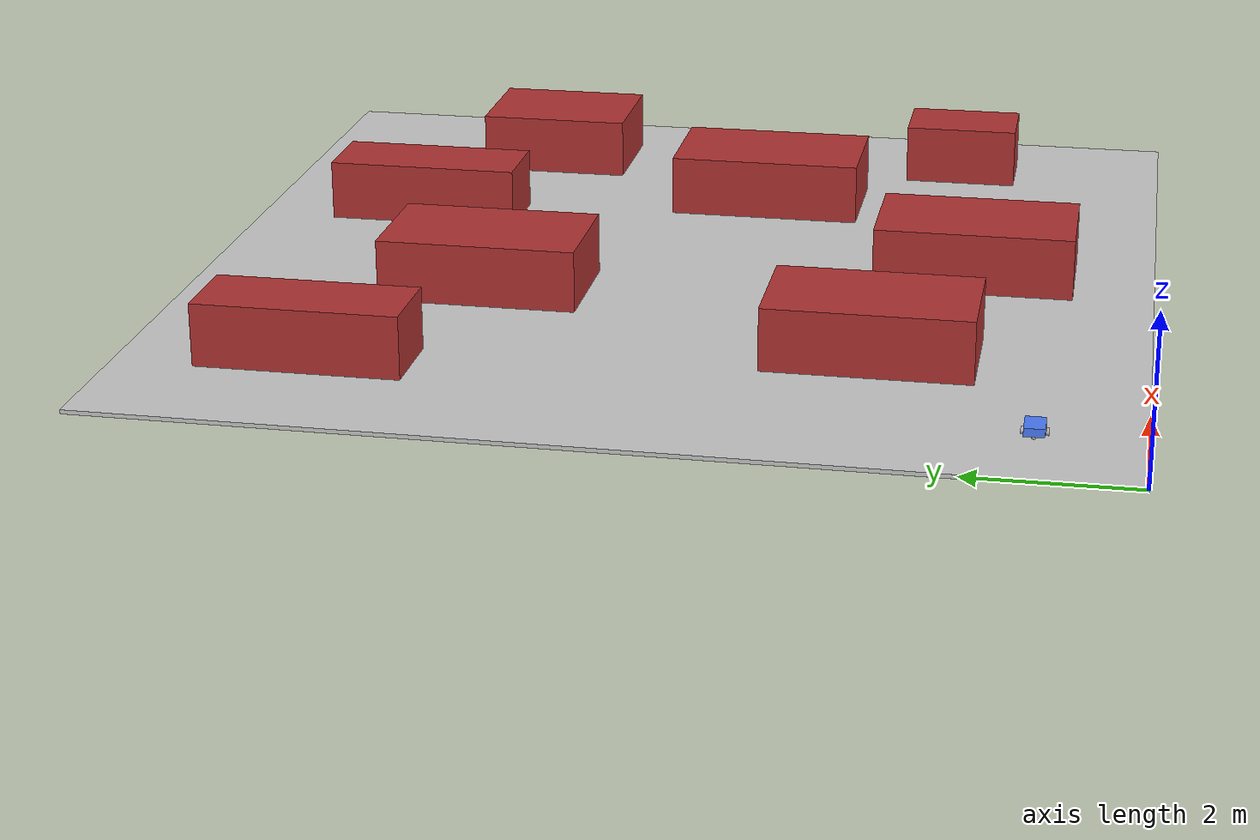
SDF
<?xml version="1.0" ?>
<sdf version="1.6">
  <world name="q_learning_world">
    <physics name="1ms" type="ignored">
      <max_step_size>0.001</max_step_size>
      <real_time_factor>1.0</real_time_factor>
    </physics>
    <plugin filename="ignition-gazebo-physics-system" name="gz::sim::systems::Physics"/>
    <plugin filename="ignition-gazebo-user-commands-system" name="gz::sim::systems::UserCommands"/>
    <plugin filename="ignition-gazebo-scene-broadcaster-system" name="gz::sim::systems::SceneBroadcaster"/>
    <light type="directional" name="sun">
      <cast_shadows>true</cast_shadows>
      <pose>0 0 20 0 0 0</pose>
      <diffuse>1 1 1 1</diffuse>
      <specular>0.3 0.3 0.3 1</specular>
      <direction>-0.5 0.1 -0.9</direction>
    </light>
    <model name="ground_plane">
      <static>true</static>
      <link name="link">
        <pose>6.000 6.000 0 0 0 0</pose>
        <collision name="collision">
          <geometry>
            <box>
              <size>12.000 12.000 0.05</size>
            </box>
          </geometry>
        </collision>
        <visual name="visual">
          <geometry>
            <box>
              <size>12.000 12.000 0.05</size>
            </box>
          </geometry>
          <material>
            <ambient>0.8 0.8 0.8 1</ambient>
            <diffuse>0.8 0.8 0.8 1</diffuse>
          </material>
        </visual>
      </link>
    </model>
    <model name="vehicle_blue">
      <pose>1.250 1.250 0.00 0 0 0</pose>
      <link name="chassis">
        <pose>0 0 0.10 0 0 0</pose>
        <inertial><mass>2.0</mass><inertia><ixx>0.02</ixx><iyy>0.06</iyy><izz>0.07</izz></inertia></inertial>
        <collision name="collision"><geometry><box><size>0.35 0.24 0.10</size></box></geometry></collision>
        <visual name="visual"><geometry><box><size>0.35 0.24 0.10</size></box></geometry><material><ambient>0.3 0.5 1.0 1</ambient></material></visual>
      </link>
      <link name="left_wheel">
        <pose>0 0.14 0.05 -1.5708 0 0</pose>
        <inertial><mass>0.2</mass><inertia><ixx>0.0003</ixx><iyy>0.0003</iyy><izz>0.0003</izz></inertia></inertial>
        <collision name="collision"><geometry><cylinder><radius>0.05</radius><length>0.03</length></cylinder></geometry></collision>
        <visual name="visual"><geometry><cylinder><radius>0.05</radius><length>0.03</length></cylinder></geometry></visual>
      </link>
      <link name="right_wheel">
        <pose>0 -0.14 0.05 -1.5708 0 0</pose>
        <inertial><mass>0.2</mass><inertia><ixx>0.0003</ixx><iyy>0.0003</iyy><izz>0.0003</izz></inertia></inertial>
        <collision name="collision"><geometry><cylinder><radius>0.05</radius><length>0.03</length></cylinder></geometry></collision>
        <visual name="visual"><geometry><cylinder><radius>0.05</radius><length>0.03</length></cylinder></geometry></visual>
      </link>
      <link name="caster">
        <pose>-0.14 0 0.03 0 0 0</pose>
        <inertial><mass>0.1</mass><inertia><ixx>0.0001</ixx><iyy>0.0001</iyy><izz>0.0001</izz></inertia></inertial>
        <collision name="collision"><geometry><sphere><radius>0.03</radius></sphere></geometry></collision>
        <visual name="visual"><geometry><sphere><radius>0.03</radius></sphere></geometry></visual>
      </link>
      <joint name="left_wheel_joint" type="revolute"><parent>chassis</parent><child>left_wheel</child><axis><xyz>0 0 1</xyz></axis></joint>
      <joint name="right_wheel_joint" type="revolute"><parent>chassis</parent><child>right_wheel</child><axis><xyz>0 0 1</xyz></axis></joint>
      <joint name="caster_joint" type="ball"><parent>chassis</parent><child>caster</child></joint>
      <plugin filename="ignition-gazebo-diff-drive-system" name="gz::sim::systems::DiffDrive">
        <left_joint>left_wheel_joint</left_joint>
        <right_joint>right_wheel_joint</right_joint>
        <topic>/model/vehicle_blue/cmd_vel</topic>
        <odom_topic>/model/vehicle_blue/odometry</odom_topic>
        <frame_id>vehicle_blue/odom</frame_id>
        <child_frame_id>vehicle_blue/chassis</child_frame_id>
        <wheel_separation>0.28</wheel_separation>
        <wheel_radius>0.05</wheel_radius>
        <max_linear_velocity>0.7</max_linear_velocity>
        <min_linear_velocity>-0.4</min_linear_velocity>
        <max_angular_velocity>2.5</max_angular_velocity>
        <min_angular_velocity>-2.5</min_angular_velocity>
      </plugin>
    </model>
    <model name="obs_0_cluster_1">
      <static>true</static>
      <pose>3.250 3.250 0.400 0 0 0</pose>
      <link name="link">
        <collision name="collision"><geometry><box>
          <size>1.500 2.500 0.800</size>
        </box></geometry></collision>
        <visual name="visual"><geometry><box>
          <size>1.500 2.500 0.800</size>
        </box></geometry>
        <material><ambient>0.7 0.2 0.2 1</ambient></material></visual>
      </link>
    </model>
    <model name="obs_1_cluster_2">
      <static>true</static>
      <pose>6.250 2.250 0.400 0 0 0</pose>
      <link name="link">
        <collision name="collision"><geometry><box>
          <size>1.500 2.500 0.800</size>
        </box></geometry></collision>
        <visual name="visual"><geometry><box>
          <size>1.500 2.500 0.800</size>
        </box></geometry>
        <material><ambient>0.7 0.2 0.2 1</ambient></material></visual>
      </link>
    </model>
    <model name="obs_2_cluster_3">
      <static>true</static>
      <pose>8.750 5.250 0.400 0 0 0</pose>
      <link name="link">
        <collision name="collision"><geometry><box>
          <size>1.500 2.500 0.800</size>
        </box></geometry></collision>
        <visual name="visual"><geometry><box>
          <size>1.500 2.500 0.800</size>
        </box></geometry>
        <material><ambient>0.7 0.2 0.2 1</ambient></material></visual>
      </link>
    </model>
    <model name="obs_3_cluster_4">
      <static>true</static>
      <pose>4.750 8.250 0.400 0 0 0</pose>
      <link name="link">
        <collision name="collision"><geometry><box>
          <size>1.500 2.500 0.800</size>
        </box></geometry></collision>
        <visual name="visual"><geometry><box>
          <size>1.500 2.500 0.800</size>
        </box></geometry>
        <material><ambient>0.7 0.2 0.2 1</ambient></material></visual>
      </link>
    </model>
    <model name="obs_4_cluster_5">
      <static>true</static>
      <pose>2.000 9.750 0.400 0 0 0</pose>
      <link name="link">
        <collision name="collision"><geometry><box>
          <size>1.000 2.500 0.800</size>
        </box></geometry></collision>
        <visual name="visual"><geometry><box>
          <size>1.000 2.500 0.800</size>
        </box></geometry>
        <material><ambient>0.7 0.2 0.2 1</ambient></material></visual>
      </link>
    </model>
    <model name="obs_5_cluster_6">
      <static>true</static>
      <pose>7.500 9.750 0.400 0 0 0</pose>
      <link name="link">
        <collision name="collision"><geometry><box>
          <size>1.000 2.500 0.800</size>
        </box></geometry></collision>
        <visual name="visual"><geometry><box>
          <size>1.000 2.500 0.800</size>
        </box></geometry>
        <material><ambient>0.7 0.2 0.2 1</ambient></material></visual>
      </link>
    </model>
    <model name="obs_6_cluster_7">
      <static>true</static>
      <pose>10.250 8.500 0.400 0 0 0</pose>
      <link name="link">
        <collision name="collision"><geometry><box>
          <size>1.500 2.000 0.800</size>
        </box></geometry></collision>
        <visual name="visual"><geometry><box>
          <size>1.500 2.000 0.800</size>
        </box></geometry>
        <material><ambient>0.7 0.2 0.2 1</ambient></material></visual>
      </link>
    </model>
    <model name="obs_7_cluster_8">
      <static>true</static>
      <pose>10.500 2.750 0.400 0 0 0</pose>
      <link name="link">
        <collision name="collision"><geometry><box>
          <size>1.000 1.500 0.800</size>
        </box></geometry></collision>
        <visual name="visual"><geometry><box>
          <size>1.000 1.500 0.800</size>
        </box></geometry>
        <material><ambient>0.7 0.2 0.2 1</ambient></material></visual>
      </link>
    </model>
  </world>
</sdf>
